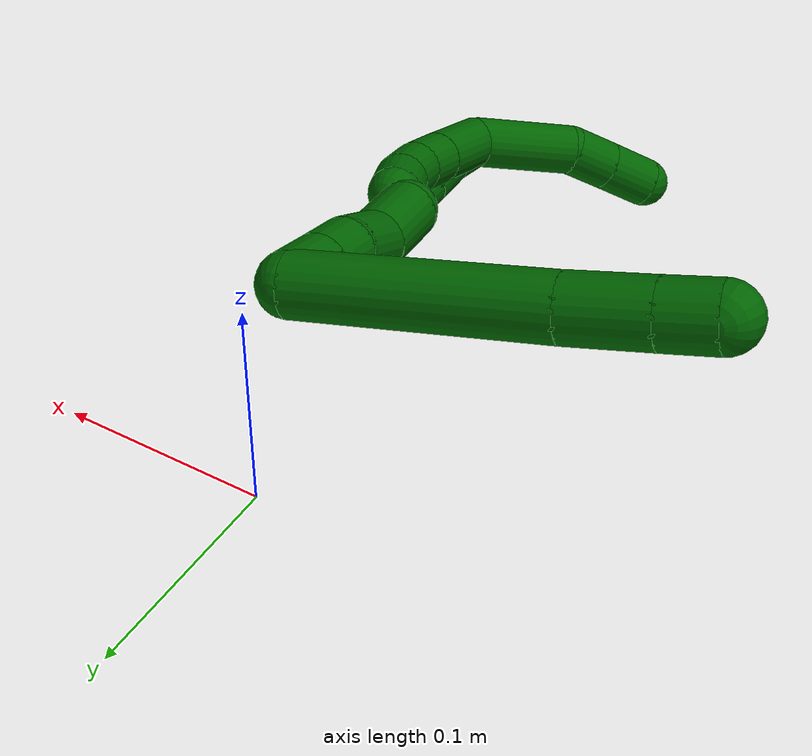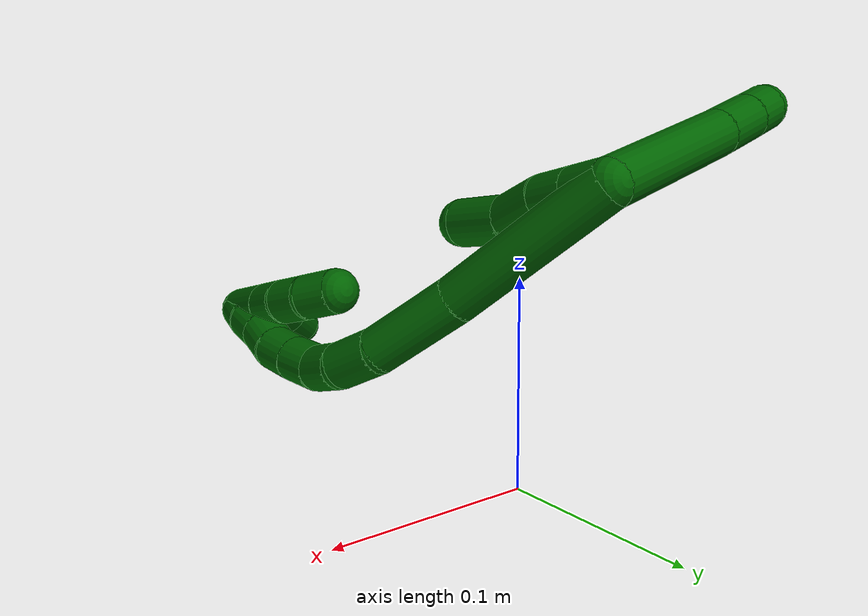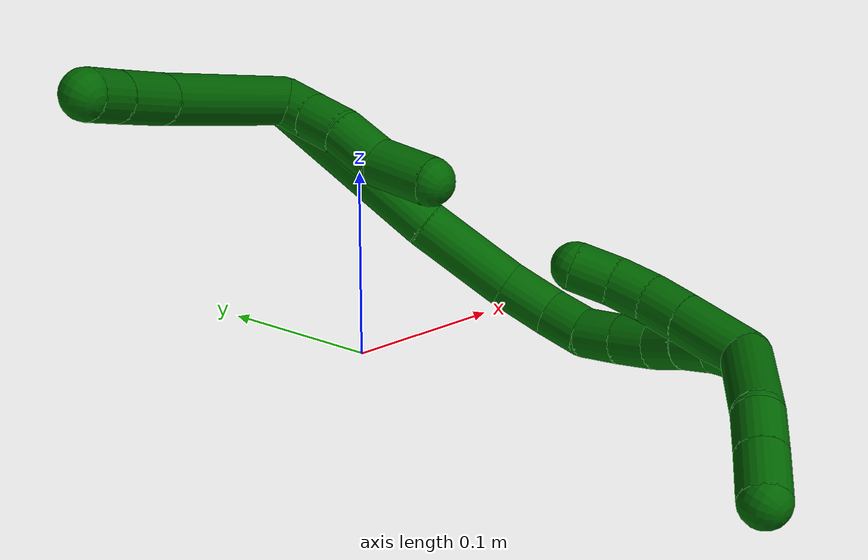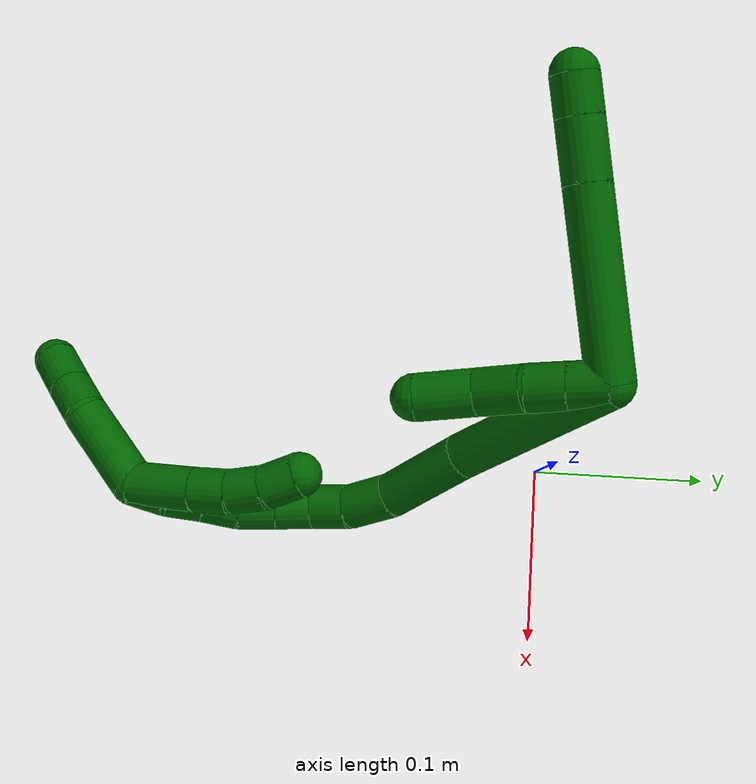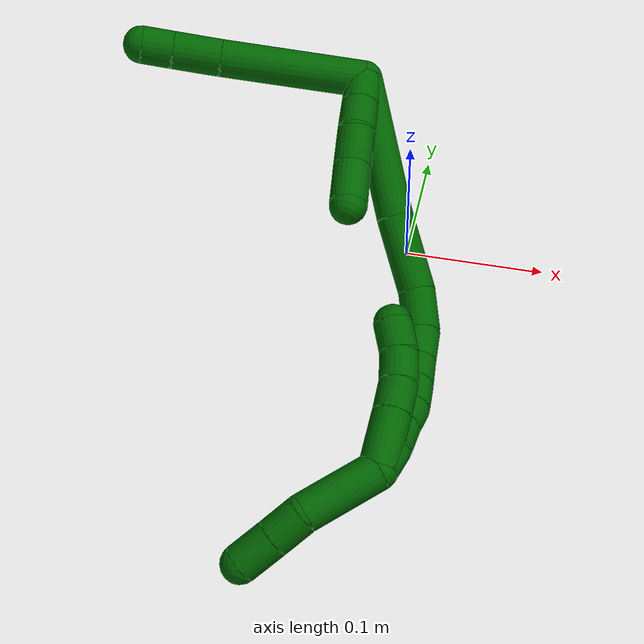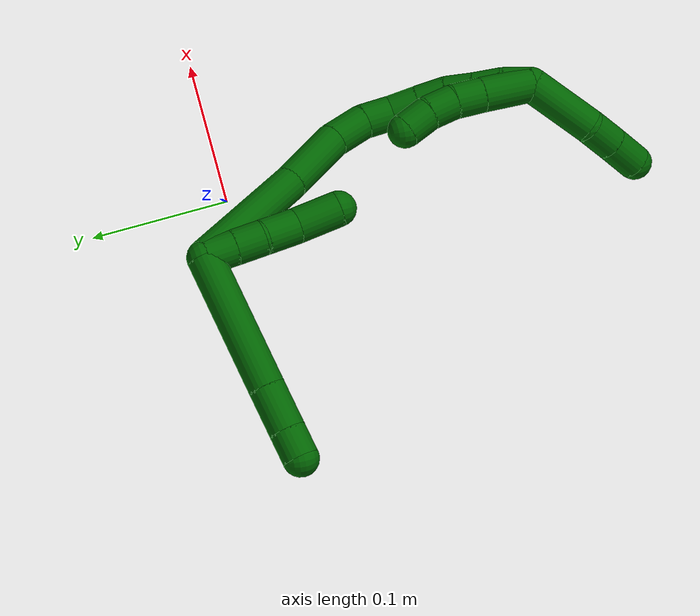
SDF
<sdf version="1.7">
 <world name="default">
  <model name="6">
   <static>0</static>
   <link name="6">
    <collision name="collision-cylinder-e_1_2_8">
     <pose>0.016276 0.045091 0.008234 -1.39018 0.341205 -0.28538</pose>
     <geometry><cylinder><radius>0.0125</radius><length>0.097282</length></cylinder></geometry>
     <surface>
      <friction><ode><mu>1.16</mu><mu2>1.16</mu2><slip1>0</slip1><slip2>0</slip2></ode></friction>
      <contact><ode><kp>1e+06</kp><kd>1</kd><max_vel>0</max_vel><min_depth>0.001</min_depth></ode></contact>
     </surface>
    </collision>
    <visual name="visual-cylinder-e_1_2_8">
     <pose>0.016276 0.045091 0.008234 -1.39018 0.341205 -0.28538</pose>
     <geometry><cylinder><radius>0.0125</radius><length>0.097282</length></cylinder></geometry>
     <material><ambient>0 0.392157 0.003922 1</ambient></material>
    </visual>
    <collision name="collision-cylinder-e_2_8_9">
     <pose>0.038345 0.10487 0.01913 -1.39152 0.370137 -0.310156</pose>
     <geometry><cylinder><radius>0.0125</radius><length>0.032021</length></cylinder></geometry>
     <surface>
      <friction><ode><mu>1.16</mu><mu2>1.16</mu2><slip1>0</slip1><slip2>0</slip2></ode></friction>
      <contact><ode><kp>1e+06</kp><kd>1</kd><max_vel>0</max_vel><min_depth>0.001</min_depth></ode></contact>
     </surface>
    </collision>
    <visual name="visual-cylinder-e_2_8_9">
     <pose>0.038345 0.10487 0.01913 -1.39152 0.370137 -0.310156</pose>
     <geometry><cylinder><radius>0.0125</radius><length>0.032021</length></cylinder></geometry>
     <material><ambient>0 0.392157 0.003922 1</ambient></material>
    </visual>
    <collision name="collision-cylinder-e_3_9_6">
     <pose>0.047961 0.129018 0.023506 -1.39149 0.378597 -0.317287</pose>
     <geometry><cylinder><radius>0.0125</radius><length>0.020696</length></cylinder></geometry>
     <surface>
      <friction><ode><mu>1.16</mu><mu2>1.16</mu2><slip1>0</slip1><slip2>0</slip2></ode></friction>
      <contact><ode><kp>1e+06</kp><kd>1</kd><max_vel>0</max_vel><min_depth>0.001</min_depth></ode></contact>
     </surface>
    </collision>
    <visual name="visual-cylinder-e_3_9_6">
     <pose>0.047961 0.129018 0.023506 -1.39149 0.378597 -0.317287</pose>
     <geometry><cylinder><radius>0.0125</radius><length>0.020696</length></cylinder></geometry>
     <material><ambient>0 0.392157 0.003922 1</ambient></material>
    </visual>
    <collision name="collision-cylinder-e_1_2_10">
     <pose>-0.000413 -0.00097 0.010416 0.092836 -0.039447 -0.001833</pose>
     <geometry><cylinder><radius>0.0125</radius><length>0.020939</length></cylinder></geometry>
     <surface>
      <friction><ode><mu>1.16</mu><mu2>1.16</mu2><slip1>0</slip1><slip2>0</slip2></ode></friction>
      <contact><ode><kp>1e+06</kp><kd>1</kd><max_vel>0</max_vel><min_depth>0.001</min_depth></ode></contact>
     </surface>
    </collision>
    <visual name="visual-cylinder-e_1_2_10">
     <pose>-0.000413 -0.00097 0.010416 0.092836 -0.039447 -0.001833</pose>
     <geometry><cylinder><radius>0.0125</radius><length>0.020939</length></cylinder></geometry>
     <material><ambient>0 0.392157 0.003922 1</ambient></material>
    </visual>
    <collision name="collision-cylinder-e_2_10_11">
     <pose>-0.001237 -0.003006 0.03122 0.102298 -0.039333 -0.002014</pose>
     <geometry><cylinder><radius>0.0125</radius><length>0.0209</length></cylinder></geometry>
     <surface>
      <friction><ode><mu>1.16</mu><mu2>1.16</mu2><slip1>0</slip1><slip2>0</slip2></ode></friction>
      <contact><ode><kp>1e+06</kp><kd>1</kd><max_vel>0</max_vel><min_depth>0.001</min_depth></ode></contact>
     </surface>
    </collision>
    <visual name="visual-cylinder-e_2_10_11">
     <pose>-0.001237 -0.003006 0.03122 0.102298 -0.039333 -0.002014</pose>
     <geometry><cylinder><radius>0.0125</radius><length>0.0209</length></cylinder></geometry>
     <material><ambient>0 0.392157 0.003922 1</ambient></material>
    </visual>
    <collision name="collision-cylinder-e_3_11_12">
     <pose>-0.004738 -0.005039 0.054343 0.075765 -0.237409 -0.00904</pose>
     <geometry><cylinder><radius>0.0125</radius><length>0.026283</length></cylinder></geometry>
     <surface>
      <friction><ode><mu>1.16</mu><mu2>1.16</mu2><slip1>0</slip1><slip2>0</slip2></ode></friction>
      <contact><ode><kp>1e+06</kp><kd>1</kd><max_vel>0</max_vel><min_depth>0.001</min_depth></ode></contact>
     </surface>
    </collision>
    <visual name="visual-cylinder-e_3_11_12">
     <pose>-0.004738 -0.005039 0.054343 0.075765 -0.237409 -0.00904</pose>
     <geometry><cylinder><radius>0.0125</radius><length>0.026283</length></cylinder></geometry>
     <material><ambient>0 0.392157 0.003922 1</ambient></material>
    </visual>
    <collision name="collision-cylinder-e_4_12_5">
     <pose>-0.006955 -0.008617 0.082779 0.164813 0.05486 0.004532</pose>
     <geometry><cylinder><radius>0.0125</radius><length>0.031878</length></cylinder></geometry>
     <surface>
      <friction><ode><mu>1.16</mu><mu2>1.16</mu2><slip1>0</slip1><slip2>0</slip2></ode></friction>
      <contact><ode><kp>1e+06</kp><kd>1</kd><max_vel>0</max_vel><min_depth>0.001</min_depth></ode></contact>
     </surface>
    </collision>
    <visual name="visual-cylinder-e_4_12_5">
     <pose>-0.006955 -0.008617 0.082779 0.164813 0.05486 0.004532</pose>
     <geometry><cylinder><radius>0.0125</radius><length>0.031878</length></cylinder></geometry>
     <material><ambient>0 0.392157 0.003922 1</ambient></material>
    </visual>
    <collision name="collision-cylinder-e_1_2_13">
     <pose>-0.023064 -0.015876 0.039205 0.384764 -0.499214 -0.099232</pose>
     <geometry><cylinder><radius>0.0125</radius><length>0.096353</length></cylinder></geometry>
     <surface>
      <friction><ode><mu>1.16</mu><mu2>1.16</mu2><slip1>0</slip1><slip2>0</slip2></ode></friction>
      <contact><ode><kp>1e+06</kp><kd>1</kd><max_vel>0</max_vel><min_depth>0.001</min_depth></ode></contact>
     </surface>
    </collision>
    <visual name="visual-cylinder-e_1_2_13">
     <pose>-0.023064 -0.015876 0.039205 0.384764 -0.499214 -0.099232</pose>
     <geometry><cylinder><radius>0.0125</radius><length>0.096353</length></cylinder></geometry>
     <material><ambient>0 0.392157 0.003922 1</ambient></material>
    </visual>
    <collision name="collision-cylinder-e_2_13_14">
     <pose>-0.057608 -0.042003 0.099183 0.4584 -0.460119 -0.109172</pose>
     <geometry><cylinder><radius>0.0125</radius><length>0.051709</length></cylinder></geometry>
     <surface>
      <friction><ode><mu>1.16</mu><mu2>1.16</mu2><slip1>0</slip1><slip2>0</slip2></ode></friction>
      <contact><ode><kp>1e+06</kp><kd>1</kd><max_vel>0</max_vel><min_depth>0.001</min_depth></ode></contact>
     </surface>
    </collision>
    <visual name="visual-cylinder-e_2_13_14">
     <pose>-0.057608 -0.042003 0.099183 0.4584 -0.460119 -0.109172</pose>
     <geometry><cylinder><radius>0.0125</radius><length>0.051709</length></cylinder></geometry>
     <material><ambient>0 0.392157 0.003922 1</ambient></material>
    </visual>
    <collision name="collision-cylinder-e_3_14_15">
     <pose>-0.072649 -0.056086 0.132793 0.290144 -0.259721 -0.038155</pose>
     <geometry><cylinder><radius>0.0125</radius><length>0.027722</length></cylinder></geometry>
     <surface>
      <friction><ode><mu>1.16</mu><mu2>1.16</mu2><slip1>0</slip1><slip2>0</slip2></ode></friction>
      <contact><ode><kp>1e+06</kp><kd>1</kd><max_vel>0</max_vel><min_depth>0.001</min_depth></ode></contact>
     </surface>
    </collision>
    <visual name="visual-cylinder-e_3_14_15">
     <pose>-0.072649 -0.056086 0.132793 0.290144 -0.259721 -0.038155</pose>
     <geometry><cylinder><radius>0.0125</radius><length>0.027722</length></cylinder></geometry>
     <material><ambient>0 0.392157 0.003922 1</ambient></material>
    </visual>
    <collision name="collision-cylinder-e_4_15_16">
     <pose>-0.076669 -0.060705 0.156561 0.071859 -0.041982 -0.001509</pose>
     <geometry><cylinder><radius>0.0125</radius><length>0.021939</length></cylinder></geometry>
     <surface>
      <friction><ode><mu>1.16</mu><mu2>1.16</mu2><slip1>0</slip1><slip2>0</slip2></ode></friction>
      <contact><ode><kp>1e+06</kp><kd>1</kd><max_vel>0</max_vel><min_depth>0.001</min_depth></ode></contact>
     </surface>
    </collision>
    <visual name="visual-cylinder-e_4_15_16">
     <pose>-0.076669 -0.060705 0.156561 0.071859 -0.041982 -0.001509</pose>
     <geometry><cylinder><radius>0.0125</radius><length>0.021939</length></cylinder></geometry>
     <material><ambient>0 0.392157 0.003922 1</ambient></material>
    </visual>
    <collision name="collision-cylinder-e_5_16_17">
     <pose>-0.074357 -0.063088 0.177601 0.156521 0.264509 0.020864</pose>
     <geometry><cylinder><radius>0.0125</radius><length>0.021206</length></cylinder></geometry>
     <surface>
      <friction><ode><mu>1.16</mu><mu2>1.16</mu2><slip1>0</slip1><slip2>0</slip2></ode></friction>
      <contact><ode><kp>1e+06</kp><kd>1</kd><max_vel>0</max_vel><min_depth>0.001</min_depth></ode></contact>
     </surface>
    </collision>
    <visual name="visual-cylinder-e_5_16_17">
     <pose>-0.074357 -0.063088 0.177601 0.156521 0.264509 0.020864</pose>
     <geometry><cylinder><radius>0.0125</radius><length>0.021206</length></cylinder></geometry>
     <material><ambient>0 0.392157 0.003922 1</ambient></material>
    </visual>
    <collision name="collision-cylinder-e_6_17_18">
     <pose>-0.068297 -0.066 0.197603 0.132397 0.318305 0.021281</pose>
     <geometry><cylinder><radius>0.0125</radius><length>0.021015</length></cylinder></geometry>
     <surface>
      <friction><ode><mu>1.16</mu><mu2>1.16</mu2><slip1>0</slip1><slip2>0</slip2></ode></friction>
      <contact><ode><kp>1e+06</kp><kd>1</kd><max_vel>0</max_vel><min_depth>0.001</min_depth></ode></contact>
     </surface>
    </collision>
    <visual name="visual-cylinder-e_6_17_18">
     <pose>-0.068297 -0.066 0.197603 0.132397 0.318305 0.021281</pose>
     <geometry><cylinder><radius>0.0125</radius><length>0.021015</length></cylinder></geometry>
     <material><ambient>0 0.392157 0.003922 1</ambient></material>
    </visual>
    <collision name="collision-cylinder-e_7_18_19">
     <pose>-0.060127 -0.066814 0.216228 -0.057685 0.509011 -0.01501</pose>
     <geometry><cylinder><radius>0.0125</radius><length>0.020034</length></cylinder></geometry>
     <surface>
      <friction><ode><mu>1.16</mu><mu2>1.16</mu2><slip1>0</slip1><slip2>0</slip2></ode></friction>
      <contact><ode><kp>1e+06</kp><kd>1</kd><max_vel>0</max_vel><min_depth>0.001</min_depth></ode></contact>
     </surface>
    </collision>
    <visual name="visual-cylinder-e_7_18_19">
     <pose>-0.060127 -0.066814 0.216228 -0.057685 0.509011 -0.01501</pose>
     <geometry><cylinder><radius>0.0125</radius><length>0.020034</length></cylinder></geometry>
     <material><ambient>0 0.392157 0.003922 1</ambient></material>
    </visual>
    <collision name="collision-cylinder-e_8_19_20">
     <pose>-0.051285 -0.066235 0.234153 -0.008117 0.406814 -0.001674</pose>
     <geometry><cylinder><radius>0.0125</radius><length>0.020019</length></cylinder></geometry>
     <surface>
      <friction><ode><mu>1.16</mu><mu2>1.16</mu2><slip1>0</slip1><slip2>0</slip2></ode></friction>
      <contact><ode><kp>1e+06</kp><kd>1</kd><max_vel>0</max_vel><min_depth>0.001</min_depth></ode></contact>
     </surface>
    </collision>
    <visual name="visual-cylinder-e_8_19_20">
     <pose>-0.051285 -0.066235 0.234153 -0.008117 0.406814 -0.001674</pose>
     <geometry><cylinder><radius>0.0125</radius><length>0.020019</length></cylinder></geometry>
     <material><ambient>0 0.392157 0.003922 1</ambient></material>
    </visual>
    <collision name="collision-cylinder-e_9_20_1">
     <pose>-0.043967 -0.064372 0.252595 -0.191004 0.342343 -0.033115</pose>
     <geometry><cylinder><radius>0.0125</radius><length>0.020003</length></cylinder></geometry>
     <surface>
      <friction><ode><mu>1.16</mu><mu2>1.16</mu2><slip1>0</slip1><slip2>0</slip2></ode></friction>
      <contact><ode><kp>1e+06</kp><kd>1</kd><max_vel>0</max_vel><min_depth>0.001</min_depth></ode></contact>
     </surface>
    </collision>
    <visual name="visual-cylinder-e_9_20_1">
     <pose>-0.043967 -0.064372 0.252595 -0.191004 0.342343 -0.033115</pose>
     <geometry><cylinder><radius>0.0125</radius><length>0.020003</length></cylinder></geometry>
     <material><ambient>0 0.392157 0.003922 1</ambient></material>
    </visual>
    <collision name="collision-cylinder-e_1_1_21">
     <pose>-0.038856 -0.043911 0.2795 -0.81338 0.068134 -0.029355</pose>
     <geometry><cylinder><radius>0.0125</radius><length>0.051514</length></cylinder></geometry>
     <surface>
      <friction><ode><mu>1.16</mu><mu2>1.16</mu2><slip1>0</slip1><slip2>0</slip2></ode></friction>
      <contact><ode><kp>1e+06</kp><kd>1</kd><max_vel>0</max_vel><min_depth>0.001</min_depth></ode></contact>
     </surface>
    </collision>
    <visual name="visual-cylinder-e_1_1_21">
     <pose>-0.038856 -0.043911 0.2795 -0.81338 0.068134 -0.029355</pose>
     <geometry><cylinder><radius>0.0125</radius><length>0.051514</length></cylinder></geometry>
     <material><ambient>0 0.392157 0.003922 1</ambient></material>
    </visual>
    <collision name="collision-cylinder-e_2_21_22">
     <pose>-0.039975 -0.017382 0.304904 -0.792328 -0.254704 0.107015</pose>
     <geometry><cylinder><radius>0.0125</radius><length>0.022806</length></cylinder></geometry>
     <surface>
      <friction><ode><mu>1.16</mu><mu2>1.16</mu2><slip1>0</slip1><slip2>0</slip2></ode></friction>
      <contact><ode><kp>1e+06</kp><kd>1</kd><max_vel>0</max_vel><min_depth>0.001</min_depth></ode></contact>
     </surface>
    </collision>
    <visual name="visual-cylinder-e_2_21_22">
     <pose>-0.039975 -0.017382 0.304904 -0.792328 -0.254704 0.107015</pose>
     <geometry><cylinder><radius>0.0125</radius><length>0.022806</length></cylinder></geometry>
     <material><ambient>0 0.392157 0.003922 1</ambient></material>
    </visual>
    <collision name="collision-cylinder-e_3_22_4">
     <pose>-0.046132 -0.000532 0.321209 -0.810289 -0.258596 0.111411</pose>
     <geometry><cylinder><radius>0.0125</radius><length>0.02568</length></cylinder></geometry>
     <surface>
      <friction><ode><mu>1.16</mu><mu2>1.16</mu2><slip1>0</slip1><slip2>0</slip2></ode></friction>
      <contact><ode><kp>1e+06</kp><kd>1</kd><max_vel>0</max_vel><min_depth>0.001</min_depth></ode></contact>
     </surface>
    </collision>
    <visual name="visual-cylinder-e_3_22_4">
     <pose>-0.046132 -0.000532 0.321209 -0.810289 -0.258596 0.111411</pose>
     <geometry><cylinder><radius>0.0125</radius><length>0.02568</length></cylinder></geometry>
     <material><ambient>0 0.392157 0.003922 1</ambient></material>
    </visual>
    <collision name="collision-cylinder-e_1_1_23">
     <pose>-0.04026 -0.062801 0.243078 3.12996 0.018616 2.02492</pose>
     <geometry><cylinder><radius>0.0125</radius><length>0.037542</length></cylinder></geometry>
     <surface>
      <friction><ode><mu>1.16</mu><mu2>1.16</mu2><slip1>0</slip1><slip2>0</slip2></ode></friction>
      <contact><ode><kp>1e+06</kp><kd>1</kd><max_vel>0</max_vel><min_depth>0.001</min_depth></ode></contact>
     </surface>
    </collision>
    <visual name="visual-cylinder-e_1_1_23">
     <pose>-0.04026 -0.062801 0.243078 3.12996 0.018616 2.02492</pose>
     <geometry><cylinder><radius>0.0125</radius><length>0.037542</length></cylinder></geometry>
     <material><ambient>0 0.392157 0.003922 1</ambient></material>
    </visual>
    <collision name="collision-cylinder-e_2_23_24">
     <pose>-0.039644 -0.062842 0.213697 -3.12492 0.025092 -1.96864</pose>
     <geometry><cylinder><radius>0.0125</radius><length>0.021239</length></cylinder></geometry>
     <surface>
      <friction><ode><mu>1.16</mu><mu2>1.16</mu2><slip1>0</slip1><slip2>0</slip2></ode></friction>
      <contact><ode><kp>1e+06</kp><kd>1</kd><max_vel>0</max_vel><min_depth>0.001</min_depth></ode></contact>
     </surface>
    </collision>
    <visual name="visual-cylinder-e_2_23_24">
     <pose>-0.039644 -0.062842 0.213697 -3.12492 0.025092 -1.96864</pose>
     <geometry><cylinder><radius>0.0125</radius><length>0.021239</length></cylinder></geometry>
     <material><ambient>0 0.392157 0.003922 1</ambient></material>
    </visual>
    <collision name="collision-cylinder-e_3_24_25">
     <pose>-0.038838 -0.060741 0.19311 -2.95098 0.053032 -0.541276</pose>
     <geometry><cylinder><radius>0.0125</radius><length>0.020341</length></cylinder></geometry>
     <surface>
      <friction><ode><mu>1.16</mu><mu2>1.16</mu2><slip1>0</slip1><slip2>0</slip2></ode></friction>
      <contact><ode><kp>1e+06</kp><kd>1</kd><max_vel>0</max_vel><min_depth>0.001</min_depth></ode></contact>
     </surface>
    </collision>
    <visual name="visual-cylinder-e_3_24_25">
     <pose>-0.038838 -0.060741 0.19311 -2.95098 0.053032 -0.541276</pose>
     <geometry><cylinder><radius>0.0125</radius><length>0.020341</length></cylinder></geometry>
     <material><ambient>0 0.392157 0.003922 1</ambient></material>
    </visual>
    <collision name="collision-cylinder-e_4_25_3">
     <pose>-0.037309 -0.054779 0.173563 -2.7425 0.095003 -0.461734</pose>
     <geometry><cylinder><radius>0.0125</radius><length>0.020878</length></cylinder></geometry>
     <surface>
      <friction><ode><mu>1.16</mu><mu2>1.16</mu2><slip1>0</slip1><slip2>0</slip2></ode></friction>
      <contact><ode><kp>1e+06</kp><kd>1</kd><max_vel>0</max_vel><min_depth>0.001</min_depth></ode></contact>
     </surface>
    </collision>
    <visual name="visual-cylinder-e_4_25_3">
     <pose>-0.037309 -0.054779 0.173563 -2.7425 0.095003 -0.461734</pose>
     <geometry><cylinder><radius>0.0125</radius><length>0.020878</length></cylinder></geometry>
     <material><ambient>0 0.392157 0.003922 1</ambient></material>
    </visual>
    <collision name="collision-sphere-3">
     <pose>-0.036319 -0.050741 0.163988 0 -0 0</pose>
     <geometry><sphere><radius>0.0125</radius></sphere></geometry>
     <surface>
      <friction><ode><mu>1.16</mu><mu2>1.16</mu2><slip1>0</slip1><slip2>0</slip2></ode></friction>
      <contact><ode><kp>1e+06</kp><kd>1</kd><max_vel>0</max_vel><min_depth>0.001</min_depth></ode></contact>
     </surface>
    </collision>
    <visual name="visual-sphere-3">
     <pose>-0.036319 -0.050741 0.163988 0 -0 0</pose>
     <geometry><sphere><radius>0.0125</radius></sphere></geometry>
     <material><ambient>0 0.392157 0.003922 1</ambient></material>
    </visual>
    <collision name="collision-sphere-25">
     <pose>-0.038299 -0.058817 0.183138 0 -0 0</pose>
     <geometry><sphere><radius>0.0125</radius></sphere></geometry>
     <surface>
      <friction><ode><mu>1.16</mu><mu2>1.16</mu2><slip1>0</slip1><slip2>0</slip2></ode></friction>
      <contact><ode><kp>1e+06</kp><kd>1</kd><max_vel>0</max_vel><min_depth>0.001</min_depth></ode></contact>
     </surface>
    </collision>
    <visual name="visual-sphere-25">
     <pose>-0.038299 -0.058817 0.183138 0 -0 0</pose>
     <geometry><sphere><radius>0.0125</radius></sphere></geometry>
     <material><ambient>0 0.392157 0.003922 1</ambient></material>
    </visual>
    <collision name="collision-sphere-24">
     <pose>-0.039377 -0.062665 0.203083 0 -0 0</pose>
     <geometry><sphere><radius>0.0125</radius></sphere></geometry>
     <surface>
      <friction><ode><mu>1.16</mu><mu2>1.16</mu2><slip1>0</slip1><slip2>0</slip2></ode></friction>
      <contact><ode><kp>1e+06</kp><kd>1</kd><max_vel>0</max_vel><min_depth>0.001</min_depth></ode></contact>
     </surface>
    </collision>
    <visual name="visual-sphere-24">
     <pose>-0.039377 -0.062665 0.203083 0 -0 0</pose>
     <geometry><sphere><radius>0.0125</radius></sphere></geometry>
     <material><ambient>0 0.392157 0.003922 1</ambient></material>
    </visual>
    <collision name="collision-sphere-23">
     <pose>-0.03991 -0.063019 0.224312 0 -0 0</pose>
     <geometry><sphere><radius>0.0125</radius></sphere></geometry>
     <surface>
      <friction><ode><mu>1.16</mu><mu2>1.16</mu2><slip1>0</slip1><slip2>0</slip2></ode></friction>
      <contact><ode><kp>1e+06</kp><kd>1</kd><max_vel>0</max_vel><min_depth>0.001</min_depth></ode></contact>
     </surface>
    </collision>
    <visual name="visual-sphere-23">
     <pose>-0.03991 -0.063019 0.224312 0 -0 0</pose>
     <geometry><sphere><radius>0.0125</radius></sphere></geometry>
     <material><ambient>0 0.392157 0.003922 1</ambient></material>
    </visual>
    <collision name="collision-sphere-4">
     <pose>-0.049415 0.008461 0.329765 0 -0 0</pose>
     <geometry><sphere><radius>0.0125</radius></sphere></geometry>
     <surface>
      <friction><ode><mu>1.16</mu><mu2>1.16</mu2><slip1>0</slip1><slip2>0</slip2></ode></friction>
      <contact><ode><kp>1e+06</kp><kd>1</kd><max_vel>0</max_vel><min_depth>0.001</min_depth></ode></contact>
     </surface>
    </collision>
    <visual name="visual-sphere-4">
     <pose>-0.049415 0.008461 0.329765 0 -0 0</pose>
     <geometry><sphere><radius>0.0125</radius></sphere></geometry>
     <material><ambient>0 0.392157 0.003922 1</ambient></material>
    </visual>
    <collision name="collision-sphere-22">
     <pose>-0.042848 -0.009525 0.312653 0 -0 0</pose>
     <geometry><sphere><radius>0.0125</radius></sphere></geometry>
     <surface>
      <friction><ode><mu>1.16</mu><mu2>1.16</mu2><slip1>0</slip1><slip2>0</slip2></ode></friction>
      <contact><ode><kp>1e+06</kp><kd>1</kd><max_vel>0</max_vel><min_depth>0.001</min_depth></ode></contact>
     </surface>
    </collision>
    <visual name="visual-sphere-22">
     <pose>-0.042848 -0.009525 0.312653 0 -0 0</pose>
     <geometry><sphere><radius>0.0125</radius></sphere></geometry>
     <material><ambient>0 0.392157 0.003922 1</ambient></material>
    </visual>
    <collision name="collision-sphere-21">
     <pose>-0.037102 -0.025239 0.297156 0 -0 0</pose>
     <geometry><sphere><radius>0.0125</radius></sphere></geometry>
     <surface>
      <friction><ode><mu>1.16</mu><mu2>1.16</mu2><slip1>0</slip1><slip2>0</slip2></ode></friction>
      <contact><ode><kp>1e+06</kp><kd>1</kd><max_vel>0</max_vel><min_depth>0.001</min_depth></ode></contact>
     </surface>
    </collision>
    <visual name="visual-sphere-21">
     <pose>-0.037102 -0.025239 0.297156 0 -0 0</pose>
     <geometry><sphere><radius>0.0125</radius></sphere></geometry>
     <material><ambient>0 0.392157 0.003922 1</ambient></material>
    </visual>
    <collision name="collision-sphere-1">
     <pose>-0.040609 -0.062583 0.261845 0 -0 0</pose>
     <geometry><sphere><radius>0.0125</radius></sphere></geometry>
     <surface>
      <friction><ode><mu>1.16</mu><mu2>1.16</mu2><slip1>0</slip1><slip2>0</slip2></ode></friction>
      <contact><ode><kp>1e+06</kp><kd>1</kd><max_vel>0</max_vel><min_depth>0.001</min_depth></ode></contact>
     </surface>
    </collision>
    <visual name="visual-sphere-1">
     <pose>-0.040609 -0.062583 0.261845 0 -0 0</pose>
     <geometry><sphere><radius>0.0125</radius></sphere></geometry>
     <material><ambient>0 0.392157 0.003922 1</ambient></material>
    </visual>
    <collision name="collision-sphere-11">
     <pose>-0.001648 -0.004072 0.041607 0 -0 0</pose>
     <geometry><sphere><radius>0.0125</radius></sphere></geometry>
     <surface>
      <friction><ode><mu>1.16</mu><mu2>1.16</mu2><slip1>0</slip1><slip2>0</slip2></ode></friction>
      <contact><ode><kp>1e+06</kp><kd>1</kd><max_vel>0</max_vel><min_depth>0.001</min_depth></ode></contact>
     </surface>
    </collision>
    <visual name="visual-sphere-11">
     <pose>-0.001648 -0.004072 0.041607 0 -0 0</pose>
     <geometry><sphere><radius>0.0125</radius></sphere></geometry>
     <material><ambient>0 0.392157 0.003922 1</ambient></material>
    </visual>
    <collision name="collision-sphere-10">
     <pose>-0.000826 -0.00194 0.020833 0 -0 0</pose>
     <geometry><sphere><radius>0.0125</radius></sphere></geometry>
     <surface>
      <friction><ode><mu>1.16</mu><mu2>1.16</mu2><slip1>0</slip1><slip2>0</slip2></ode></friction>
      <contact><ode><kp>1e+06</kp><kd>1</kd><max_vel>0</max_vel><min_depth>0.001</min_depth></ode></contact>
     </surface>
    </collision>
    <visual name="visual-sphere-10">
     <pose>-0.000826 -0.00194 0.020833 0 -0 0</pose>
     <geometry><sphere><radius>0.0125</radius></sphere></geometry>
     <material><ambient>0 0.392157 0.003922 1</ambient></material>
    </visual>
    <collision name="collision-sphere-6">
     <pose>0.051786 0.13848 0.025221 0 -0 0</pose>
     <geometry><sphere><radius>0.0125</radius></sphere></geometry>
     <surface>
      <friction><ode><mu>1.16</mu><mu2>1.16</mu2><slip1>0</slip1><slip2>0</slip2></ode></friction>
      <contact><ode><kp>1e+06</kp><kd>1</kd><max_vel>0</max_vel><min_depth>0.001</min_depth></ode></contact>
     </surface>
    </collision>
    <visual name="visual-sphere-6">
     <pose>0.051786 0.13848 0.025221 0 -0 0</pose>
     <geometry><sphere><radius>0.0125</radius></sphere></geometry>
     <material><ambient>0 0.392157 0.003922 1</ambient></material>
    </visual>
    <collision name="collision-sphere-9">
     <pose>0.044136 0.119557 0.021792 0 -0 0</pose>
     <geometry><sphere><radius>0.0125</radius></sphere></geometry>
     <surface>
      <friction><ode><mu>1.16</mu><mu2>1.16</mu2><slip1>0</slip1><slip2>0</slip2></ode></friction>
      <contact><ode><kp>1e+06</kp><kd>1</kd><max_vel>0</max_vel><min_depth>0.001</min_depth></ode></contact>
     </surface>
    </collision>
    <visual name="visual-sphere-9">
     <pose>0.044136 0.119557 0.021792 0 -0 0</pose>
     <geometry><sphere><radius>0.0125</radius></sphere></geometry>
     <material><ambient>0 0.392157 0.003922 1</ambient></material>
    </visual>
    <collision name="collision-sphere-2">
     <geometry><sphere><radius>0.0125</radius></sphere></geometry>
     <surface>
      <friction><ode><mu>1.16</mu><mu2>1.16</mu2><slip1>0</slip1><slip2>0</slip2></ode></friction>
      <contact><ode><kp>1e+06</kp><kd>1</kd><max_vel>0</max_vel><min_depth>0.001</min_depth></ode></contact>
     </surface>
    </collision>
    <visual name="visual-sphere-2">
     <geometry><sphere><radius>0.0125</radius></sphere></geometry>
     <material><ambient>0 0.392157 0.003922 1</ambient></material>
    </visual>
    <collision name="collision-sphere-19">
     <pose>-0.055245 -0.066309 0.224961 0 -0 0</pose>
     <geometry><sphere><radius>0.0125</radius></sphere></geometry>
     <surface>
      <friction><ode><mu>1.16</mu><mu2>1.16</mu2><slip1>0</slip1><slip2>0</slip2></ode></friction>
      <contact><ode><kp>1e+06</kp><kd>1</kd><max_vel>0</max_vel><min_depth>0.001</min_depth></ode></contact>
     </surface>
    </collision>
    <visual name="visual-sphere-19">
     <pose>-0.055245 -0.066309 0.224961 0 -0 0</pose>
     <geometry><sphere><radius>0.0125</radius></sphere></geometry>
     <material><ambient>0 0.392157 0.003922 1</ambient></material>
    </visual>
    <collision name="collision-sphere-8">
     <pose>0.032553 0.090183 0.016468 0 -0 0</pose>
     <geometry><sphere><radius>0.0125</radius></sphere></geometry>
     <surface>
      <friction><ode><mu>1.16</mu><mu2>1.16</mu2><slip1>0</slip1><slip2>0</slip2></ode></friction>
      <contact><ode><kp>1e+06</kp><kd>1</kd><max_vel>0</max_vel><min_depth>0.001</min_depth></ode></contact>
     </surface>
    </collision>
    <visual name="visual-sphere-8">
     <pose>0.032553 0.090183 0.016468 0 -0 0</pose>
     <geometry><sphere><radius>0.0125</radius></sphere></geometry>
     <material><ambient>0 0.392157 0.003922 1</ambient></material>
    </visual>
    <collision name="collision-sphere-12">
     <pose>-0.007829 -0.006006 0.067079 0 -0 0</pose>
     <geometry><sphere><radius>0.0125</radius></sphere></geometry>
     <surface>
      <friction><ode><mu>1.16</mu><mu2>1.16</mu2><slip1>0</slip1><slip2>0</slip2></ode></friction>
      <contact><ode><kp>1e+06</kp><kd>1</kd><max_vel>0</max_vel><min_depth>0.001</min_depth></ode></contact>
     </surface>
    </collision>
    <visual name="visual-sphere-12">
     <pose>-0.007829 -0.006006 0.067079 0 -0 0</pose>
     <geometry><sphere><radius>0.0125</radius></sphere></geometry>
     <material><ambient>0 0.392157 0.003922 1</ambient></material>
    </visual>
    <collision name="collision-sphere-5">
     <pose>-0.006081 -0.011228 0.098478 0 -0 0</pose>
     <geometry><sphere><radius>0.0125</radius></sphere></geometry>
     <surface>
      <friction><ode><mu>1.16</mu><mu2>1.16</mu2><slip1>0</slip1><slip2>0</slip2></ode></friction>
      <contact><ode><kp>1e+06</kp><kd>1</kd><max_vel>0</max_vel><min_depth>0.001</min_depth></ode></contact>
     </surface>
    </collision>
    <visual name="visual-sphere-5">
     <pose>-0.006081 -0.011228 0.098478 0 -0 0</pose>
     <geometry><sphere><radius>0.0125</radius></sphere></geometry>
     <material><ambient>0 0.392157 0.003922 1</ambient></material>
    </visual>
    <collision name="collision-sphere-13">
     <pose>-0.046128 -0.031752 0.078409 0 -0 0</pose>
     <geometry><sphere><radius>0.0125</radius></sphere></geometry>
     <surface>
      <friction><ode><mu>1.16</mu><mu2>1.16</mu2><slip1>0</slip1><slip2>0</slip2></ode></friction>
      <contact><ode><kp>1e+06</kp><kd>1</kd><max_vel>0</max_vel><min_depth>0.001</min_depth></ode></contact>
     </surface>
    </collision>
    <visual name="visual-sphere-13">
     <pose>-0.046128 -0.031752 0.078409 0 -0 0</pose>
     <geometry><sphere><radius>0.0125</radius></sphere></geometry>
     <material><ambient>0 0.392157 0.003922 1</ambient></material>
    </visual>
    <collision name="collision-sphere-14">
     <pose>-0.069089 -0.052254 0.119957 0 -0 0</pose>
     <geometry><sphere><radius>0.0125</radius></sphere></geometry>
     <surface>
      <friction><ode><mu>1.16</mu><mu2>1.16</mu2><slip1>0</slip1><slip2>0</slip2></ode></friction>
      <contact><ode><kp>1e+06</kp><kd>1</kd><max_vel>0</max_vel><min_depth>0.001</min_depth></ode></contact>
     </surface>
    </collision>
    <visual name="visual-sphere-14">
     <pose>-0.069089 -0.052254 0.119957 0 -0 0</pose>
     <geometry><sphere><radius>0.0125</radius></sphere></geometry>
     <material><ambient>0 0.392157 0.003922 1</ambient></material>
    </visual>
    <collision name="collision-sphere-15">
     <pose>-0.076208 -0.059919 0.145629 0 -0 0</pose>
     <geometry><sphere><radius>0.0125</radius></sphere></geometry>
     <surface>
      <friction><ode><mu>1.16</mu><mu2>1.16</mu2><slip1>0</slip1><slip2>0</slip2></ode></friction>
      <contact><ode><kp>1e+06</kp><kd>1</kd><max_vel>0</max_vel><min_depth>0.001</min_depth></ode></contact>
     </surface>
    </collision>
    <visual name="visual-sphere-15">
     <pose>-0.076208 -0.059919 0.145629 0 -0 0</pose>
     <geometry><sphere><radius>0.0125</radius></sphere></geometry>
     <material><ambient>0 0.392157 0.003922 1</ambient></material>
    </visual>
    <collision name="collision-sphere-16">
     <pose>-0.077129 -0.061492 0.167492 0 -0 0</pose>
     <geometry><sphere><radius>0.0125</radius></sphere></geometry>
     <surface>
      <friction><ode><mu>1.16</mu><mu2>1.16</mu2><slip1>0</slip1><slip2>0</slip2></ode></friction>
      <contact><ode><kp>1e+06</kp><kd>1</kd><max_vel>0</max_vel><min_depth>0.001</min_depth></ode></contact>
     </surface>
    </collision>
    <visual name="visual-sphere-16">
     <pose>-0.077129 -0.061492 0.167492 0 -0 0</pose>
     <geometry><sphere><radius>0.0125</radius></sphere></geometry>
     <material><ambient>0 0.392157 0.003922 1</ambient></material>
    </visual>
    <collision name="collision-sphere-17">
     <pose>-0.071585 -0.064683 0.18771 0 -0 0</pose>
     <geometry><sphere><radius>0.0125</radius></sphere></geometry>
     <surface>
      <friction><ode><mu>1.16</mu><mu2>1.16</mu2><slip1>0</slip1><slip2>0</slip2></ode></friction>
      <contact><ode><kp>1e+06</kp><kd>1</kd><max_vel>0</max_vel><min_depth>0.001</min_depth></ode></contact>
     </surface>
    </collision>
    <visual name="visual-sphere-17">
     <pose>-0.071585 -0.064683 0.18771 0 -0 0</pose>
     <geometry><sphere><radius>0.0125</radius></sphere></geometry>
     <material><ambient>0 0.392157 0.003922 1</ambient></material>
    </visual>
    <collision name="collision-sphere-18">
     <pose>-0.065008 -0.067318 0.207495 0 -0 0</pose>
     <geometry><sphere><radius>0.0125</radius></sphere></geometry>
     <surface>
      <friction><ode><mu>1.16</mu><mu2>1.16</mu2><slip1>0</slip1><slip2>0</slip2></ode></friction>
      <contact><ode><kp>1e+06</kp><kd>1</kd><max_vel>0</max_vel><min_depth>0.001</min_depth></ode></contact>
     </surface>
    </collision>
    <visual name="visual-sphere-18">
     <pose>-0.065008 -0.067318 0.207495 0 -0 0</pose>
     <geometry><sphere><radius>0.0125</radius></sphere></geometry>
     <material><ambient>0 0.392157 0.003922 1</ambient></material>
    </visual>
    <collision name="collision-sphere-20">
     <pose>-0.047324 -0.06616 0.243345 0 -0 0</pose>
     <geometry><sphere><radius>0.0125</radius></sphere></geometry>
     <surface>
      <friction><ode><mu>1.16</mu><mu2>1.16</mu2><slip1>0</slip1><slip2>0</slip2></ode></friction>
      <contact><ode><kp>1e+06</kp><kd>1</kd><max_vel>0</max_vel><min_depth>0.001</min_depth></ode></contact>
     </surface>
    </collision>
    <visual name="visual-sphere-20">
     <pose>-0.047324 -0.06616 0.243345 0 -0 0</pose>
     <geometry><sphere><radius>0.0125</radius></sphere></geometry>
     <material><ambient>0 0.392157 0.003922 1</ambient></material>
    </visual>
    <inertial>
     <pose>-0.026156 -0.016112 0.127557 0 -0 0</pose>
     <mass>0.75</mass>
     <inertia>
      <ixx>0.000167</ixx>
      <ixy>0</ixy>
      <ixz>0</ixz>
      <iyy>0.000126</iyy>
      <iyz>0</iyz>
      <izz>-1.9e-05</izz>
     </inertia>
    </inertial>
   </link>
   <pose>-0.036295 0.018361 0.141027 -2.69101 -1.29466 -2.07293</pose>
  </model>
 </world>
</sdf>
